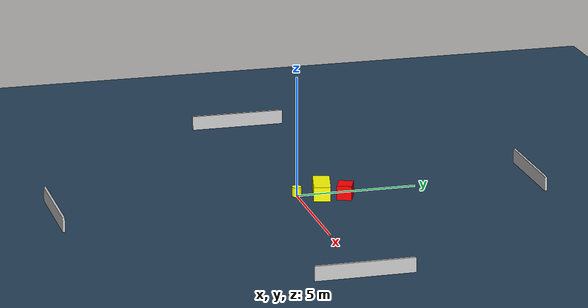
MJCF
<?xml version="1.0" ?>
<mujoco model="generated_environment">
  <option timestep="0.01" integrator="RK4" cone="elliptic"/>
  <default>
    <geom density="1"/>
  </default>
  <asset>
    <texture builtin="gradient" height="3072" name="skybox" rgb1="0.3 0.5 0.7" rgb2="0 0 0" type="skybox" width="512"/>
    <texture builtin="checker" height="300" name="groundplane" rgb1="0.2 0.3 0.4" rgb2="0.1 0.2 0.3" type="2d" width="300"/>
    <material name="groundplane" reflectance="0.2" texrepeat="5 5" texture="groundplane"/>
  </asset>
  <worldbody>
    <light dir="0 0 -1" directional="true" pos="0 0 1.5"/>
    <geom condim="3" friction="0.5 0.005 0.001" material="groundplane" name="floor" pos="0 0 0" size="0 0 0.05" type="plane"/>
    <body name="walls">
      <geom name="wall_1" condim="4" pos="-10.0 0.0 0.3" rgba="0.800000011920929 0.800000011920929 0.800000011920929 1.0" size="0.05 2.0 0.3" type="box"/>
      <geom name="wall_2" condim="4" pos="10.0 0.0 0.3" rgba="0.800000011920929 0.800000011920929 0.800000011920929 1.0" size="0.05 2.0 0.3" type="box"/>
      <geom name="wall_3" condim="4" pos="0.0 -10.0 0.3" rgba="0.800000011920929 0.800000011920929 0.800000011920929 1.0" size="2.0 0.05 0.3" type="box"/>
      <geom name="wall_4" condim="4" pos="0.0 10.0 0.3" rgba="0.800000011920929 0.800000011920929 0.800000011920929 1.0" size="2.0 0.05 0.3" type="box"/>
    </body>
    <body name="robot">
      <joint name="joint_x" type="slide" pos="0 0 0" axis="1 0 0"/>
      <joint name="joint_y" type="slide" pos="0 0 0" axis="0 1 0"/>
      <geom name="robot" type="cylinder" pos="0.0 0.0 0.2" size="0.2 0.2 0.0" mass="5.0" friction="1.0 0.005 0.0001" condim="4" rgba="1.0 1.0 0.0 1.0"/>
    </body>
    <body name="obstacle_1_movable">
      <geom name="obstacle_1_movable" condim="4" pos="0.20713303467936173 0.990681010204886 0.3" euler="0 0 256.70237397379" friction="0.0 0.005 0.001" rgba="1.0 1.0 0.0 1.0" size="0.34658936159122783 0.7836280638112074 0.3" type="box" mass="0.1"/>
      <joint type="free"/>
    </body>
    <body name="obstacle_2_static">
      <geom name="obstacle_2_static" condim="4" pos="0.694398952794017 1.8532453127189792 0.3" euler="0 0 68.06680881157894" friction="0.0 0.005 0.001" rgba="1.0 0.0 0.0 1.0" size="0.30206922809342446 0.3779054992051929 0.3" type="box"/>
    </body>
  </worldbody>
  <actuator>
    <motor name="actuator_x" joint="joint_x" gear="1" ctrlrange="-1 1"/>
    <motor name="actuator_y" joint="joint_y" gear="1" ctrlrange="-1 1"/>
  </actuator>
</mujoco>
